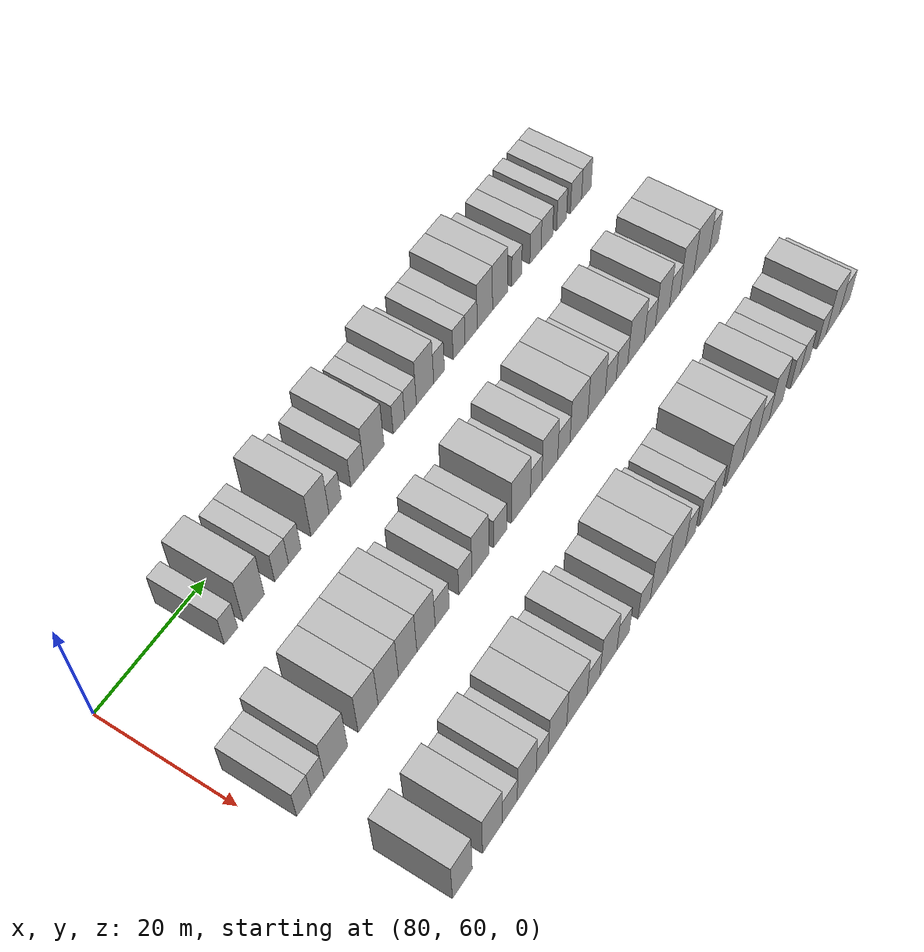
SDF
<sdf version="1.6">
 <world name="default">
  <model name="building_620">
   <static>1</static>
   <pose>82.0000 75.8753 0 0.000000 0.000000 0.000000</pose>
   <link name="link">
    <pose>0 0 3.00 0 0 0</pose>
    <collision name="collision"><geometry><box><size>10.0000 2.4942 6.0000</size></box></geometry></collision>
    <visual name="visual">
     <cast_shadows>0</cast_shadows>
     <geometry><box><size>10.0000 2.4942 6.0000</size></box></geometry>
     <material>
      <script>
       <uri>model://HANNAS_wall/materials/scripts</uri>
       <uri>model://HANNAS_wall/materials/textures</uri>
       <name>vrc/HANNAS_wall</name>
      </script>
     </material>
    </visual>
   </link>
  </model>
  <model name="building_621">
   <static>1</static>
   <pose>82.0000 80.1658 0 0.000000 0.000000 0.000000</pose>
   <link name="link">
    <pose>0 0 4.50 0 0 0</pose>
    <collision name="collision"><geometry><box><size>10.0000 4.0868 9.0000</size></box></geometry></collision>
    <visual name="visual">
     <cast_shadows>0</cast_shadows>
     <geometry><box><size>10.0000 4.0868 9.0000</size></box></geometry>
     <material>
      <script>
       <uri>model://HANNAS_wall/materials/scripts</uri>
       <uri>model://HANNAS_wall/materials/textures</uri>
       <name>vrc/HANNAS_wall</name>
      </script>
     </material>
    </visual>
   </link>
  </model>
  <model name="building_622">
   <static>1</static>
   <pose>82.0000 85.5746 0 0.000000 0.000000 0.000000</pose>
   <link name="link">
    <pose>0 0 3.00 0 0 0</pose>
    <collision name="collision"><geometry><box><size>10.0000 2.7309 6.0000</size></box></geometry></collision>
    <visual name="visual">
     <cast_shadows>0</cast_shadows>
     <geometry><box><size>10.0000 2.7309 6.0000</size></box></geometry>
     <material>
      <script>
       <uri>model://HANNAS_wall/materials/scripts</uri>
       <uri>model://HANNAS_wall/materials/textures</uri>
       <name>vrc/HANNAS_wall</name>
      </script>
     </material>
    </visual>
   </link>
  </model>
  <model name="building_623">
   <static>1</static>
   <pose>82.0000 88.1623 0 0.000000 0.000000 0.000000</pose>
   <link name="link">
    <pose>0 0 3.00 0 0 0</pose>
    <collision name="collision"><geometry><box><size>10.0000 2.4445 6.0000</size></box></geometry></collision>
    <visual name="visual">
     <cast_shadows>0</cast_shadows>
     <geometry><box><size>10.0000 2.4445 6.0000</size></box></geometry>
     <material>
      <script>
       <uri>model://HANNAS_wall/materials/scripts</uri>
       <uri>model://HANNAS_wall/materials/textures</uri>
       <name>vrc/HANNAS_wall</name>
      </script>
     </material>
    </visual>
   </link>
  </model>
  <model name="building_624">
   <static>1</static>
   <pose>82.0000 93.2092 0 0.000000 0.000000 0.000000</pose>
   <link name="link">
    <pose>0 0 4.50 0 0 0</pose>
    <collision name="collision"><geometry><box><size>10.0000 3.6492 9.0000</size></box></geometry></collision>
    <visual name="visual">
     <cast_shadows>0</cast_shadows>
     <geometry><box><size>10.0000 3.6492 9.0000</size></box></geometry>
     <material>
      <script>
       <uri>model://HANNAS_wall/materials/scripts</uri>
       <uri>model://HANNAS_wall/materials/textures</uri>
       <name>vrc/HANNAS_wall</name>
      </script>
     </material>
    </visual>
   </link>
  </model>
  <model name="building_625">
   <static>1</static>
   <pose>82.0000 96.2907 0 0.000000 0.000000 0.000000</pose>
   <link name="link">
    <pose>0 0 3.00 0 0 0</pose>
    <collision name="collision"><geometry><box><size>10.0000 2.5138 6.0000</size></box></geometry></collision>
    <visual name="visual">
     <cast_shadows>0</cast_shadows>
     <geometry><box><size>10.0000 2.5138 6.0000</size></box></geometry>
     <material>
      <script>
       <uri>model://HANNAS_wall/materials/scripts</uri>
       <uri>model://HANNAS_wall/materials/textures</uri>
       <name>vrc/HANNAS_wall</name>
      </script>
     </material>
    </visual>
   </link>
  </model>
  <model name="building_626">
   <static>1</static>
   <pose>82.0000 100.9349 0 0.000000 0.000000 0.000000</pose>
   <link name="link">
    <pose>0 0 3.00 0 0 0</pose>
    <collision name="collision"><geometry><box><size>10.0000 2.7748 6.0000</size></box></geometry></collision>
    <visual name="visual">
     <cast_shadows>0</cast_shadows>
     <geometry><box><size>10.0000 2.7748 6.0000</size></box></geometry>
     <material>
      <script>
       <uri>model://HANNAS_wall/materials/scripts</uri>
       <uri>model://HANNAS_wall/materials/textures</uri>
       <name>vrc/HANNAS_wall</name>
      </script>
     </material>
    </visual>
   </link>
  </model>
  <model name="building_627">
   <static>1</static>
   <pose>82.0000 104.4559 0 0.000000 0.000000 0.000000</pose>
   <link name="link">
    <pose>0 0 4.50 0 0 0</pose>
    <collision name="collision"><geometry><box><size>10.0000 4.2672 9.0000</size></box></geometry></collision>
    <visual name="visual">
     <cast_shadows>0</cast_shadows>
     <geometry><box><size>10.0000 4.2672 9.0000</size></box></geometry>
     <material>
      <script>
       <uri>model://HANNAS_wall/materials/scripts</uri>
       <uri>model://HANNAS_wall/materials/textures</uri>
       <name>vrc/HANNAS_wall</name>
      </script>
     </material>
    </visual>
   </link>
  </model>
  <model name="building_628">
   <static>1</static>
   <pose>82.0000 109.8465 0 0.000000 0.000000 0.000000</pose>
   <link name="link">
    <pose>0 0 3.00 0 0 0</pose>
    <collision name="collision"><geometry><box><size>10.0000 2.5140 6.0000</size></box></geometry></collision>
    <visual name="visual">
     <cast_shadows>0</cast_shadows>
     <geometry><box><size>10.0000 2.5140 6.0000</size></box></geometry>
     <material>
      <script>
       <uri>model://HANNAS_wall/materials/scripts</uri>
       <uri>model://HANNAS_wall/materials/textures</uri>
       <name>vrc/HANNAS_wall</name>
      </script>
     </material>
    </visual>
   </link>
  </model>
  <model name="building_629">
   <static>1</static>
   <pose>82.0000 112.3917 0 0.000000 0.000000 0.000000</pose>
   <link name="link">
    <pose>0 0 3.00 0 0 0</pose>
    <collision name="collision"><geometry><box><size>10.0000 2.5765 6.0000</size></box></geometry></collision>
    <visual name="visual">
     <cast_shadows>0</cast_shadows>
     <geometry><box><size>10.0000 2.5765 6.0000</size></box></geometry>
     <material>
      <script>
       <uri>model://HANNAS_wall/materials/scripts</uri>
       <uri>model://HANNAS_wall/materials/textures</uri>
       <name>vrc/HANNAS_wall</name>
      </script>
     </material>
    </visual>
   </link>
  </model>
  <model name="building_630">
   <static>1</static>
   <pose>82.0000 115.6186 0 0.000000 0.000000 0.000000</pose>
   <link name="link">
    <pose>0 0 4.50 0 0 0</pose>
    <collision name="collision"><geometry><box><size>10.0000 3.8771 9.0000</size></box></geometry></collision>
    <visual name="visual">
     <cast_shadows>0</cast_shadows>
     <geometry><box><size>10.0000 3.8771 9.0000</size></box></geometry>
     <material>
      <script>
       <uri>model://HANNAS_wall/materials/scripts</uri>
       <uri>model://HANNAS_wall/materials/textures</uri>
       <name>vrc/HANNAS_wall</name>
      </script>
     </material>
    </visual>
   </link>
  </model>
  <model name="building_631">
   <static>1</static>
   <pose>82.0000 118.7643 0 0.000000 0.000000 0.000000</pose>
   <link name="link">
    <pose>0 0 3.00 0 0 0</pose>
    <collision name="collision"><geometry><box><size>10.0000 2.4145 6.0000</size></box></geometry></collision>
    <visual name="visual">
     <cast_shadows>0</cast_shadows>
     <geometry><box><size>10.0000 2.4145 6.0000</size></box></geometry>
     <material>
      <script>
       <uri>model://HANNAS_wall/materials/scripts</uri>
       <uri>model://HANNAS_wall/materials/textures</uri>
       <name>vrc/HANNAS_wall</name>
      </script>
     </material>
    </visual>
   </link>
  </model>
  <model name="building_632">
   <static>1</static>
   <pose>82.0000 123.3497 0 0.000000 0.000000 0.000000</pose>
   <link name="link">
    <pose>0 0 3.00 0 0 0</pose>
    <collision name="collision"><geometry><box><size>10.0000 2.7562 6.0000</size></box></geometry></collision>
    <visual name="visual">
     <cast_shadows>0</cast_shadows>
     <geometry><box><size>10.0000 2.7562 6.0000</size></box></geometry>
     <material>
      <script>
       <uri>model://HANNAS_wall/materials/scripts</uri>
       <uri>model://HANNAS_wall/materials/textures</uri>
       <name>vrc/HANNAS_wall</name>
      </script>
     </material>
    </visual>
   </link>
  </model>
  <model name="building_633">
   <static>1</static>
   <pose>82.0000 126.1560 0 0.000000 0.000000 0.000000</pose>
   <link name="link">
    <pose>0 0 3.00 0 0 0</pose>
    <collision name="collision"><geometry><box><size>10.0000 2.8565 6.0000</size></box></geometry></collision>
    <visual name="visual">
     <cast_shadows>0</cast_shadows>
     <geometry><box><size>10.0000 2.8565 6.0000</size></box></geometry>
     <material>
      <script>
       <uri>model://HANNAS_wall/materials/scripts</uri>
       <uri>model://HANNAS_wall/materials/textures</uri>
       <name>vrc/HANNAS_wall</name>
      </script>
     </material>
    </visual>
   </link>
  </model>
  <model name="building_634">
   <static>1</static>
   <pose>82.0000 129.3942 0 0.000000 0.000000 0.000000</pose>
   <link name="link">
    <pose>0 0 4.50 0 0 0</pose>
    <collision name="collision"><geometry><box><size>10.0000 3.6199 9.0000</size></box></geometry></collision>
    <visual name="visual">
     <cast_shadows>0</cast_shadows>
     <geometry><box><size>10.0000 3.6199 9.0000</size></box></geometry>
     <material>
      <script>
       <uri>model://HANNAS_wall/materials/scripts</uri>
       <uri>model://HANNAS_wall/materials/textures</uri>
       <name>vrc/HANNAS_wall</name>
      </script>
     </material>
    </visual>
   </link>
  </model>
  <model name="building_635">
   <static>1</static>
   <pose>82.0000 133.0277 0 0.000000 0.000000 0.000000</pose>
   <link name="link">
    <pose>0 0 4.50 0 0 0</pose>
    <collision name="collision"><geometry><box><size>10.0000 3.6472 9.0000</size></box></geometry></collision>
    <visual name="visual">
     <cast_shadows>0</cast_shadows>
     <geometry><box><size>10.0000 3.6472 9.0000</size></box></geometry>
     <material>
      <script>
       <uri>model://HANNAS_wall/materials/scripts</uri>
       <uri>model://HANNAS_wall/materials/textures</uri>
       <name>vrc/HANNAS_wall</name>
      </script>
     </material>
    </visual>
   </link>
  </model>
  <model name="building_636">
   <static>1</static>
   <pose>82.0000 137.0775 0 0.000000 0.000000 0.000000</pose>
   <link name="link">
    <pose>0 0 3.00 0 0 0</pose>
    <collision name="collision"><geometry><box><size>10.0000 2.4524 6.0000</size></box></geometry></collision>
    <visual name="visual">
     <cast_shadows>0</cast_shadows>
     <geometry><box><size>10.0000 2.4524 6.0000</size></box></geometry>
     <material>
      <script>
       <uri>model://HANNAS_wall/materials/scripts</uri>
       <uri>model://HANNAS_wall/materials/textures</uri>
       <name>vrc/HANNAS_wall</name>
      </script>
     </material>
    </visual>
   </link>
  </model>
  <model name="building_637">
   <static>1</static>
   <pose>82.0000 141.6960 0 0.000000 0.000000 0.000000</pose>
   <link name="link">
    <pose>0 0 3.00 0 0 0</pose>
    <collision name="collision"><geometry><box><size>10.0000 2.7845 6.0000</size></box></geometry></collision>
    <visual name="visual">
     <cast_shadows>0</cast_shadows>
     <geometry><box><size>10.0000 2.7845 6.0000</size></box></geometry>
     <material>
      <script>
       <uri>model://HANNAS_wall/materials/scripts</uri>
       <uri>model://HANNAS_wall/materials/textures</uri>
       <name>vrc/HANNAS_wall</name>
      </script>
     </material>
    </visual>
   </link>
  </model>
  <model name="building_638">
   <static>1</static>
   <pose>82.0000 144.5595 0 0.000000 0.000000 0.000000</pose>
   <link name="link">
    <pose>0 0 3.00 0 0 0</pose>
    <collision name="collision"><geometry><box><size>10.0000 2.9425 6.0000</size></box></geometry></collision>
    <visual name="visual">
     <cast_shadows>0</cast_shadows>
     <geometry><box><size>10.0000 2.9425 6.0000</size></box></geometry>
     <material>
      <script>
       <uri>model://HANNAS_wall/materials/scripts</uri>
       <uri>model://HANNAS_wall/materials/textures</uri>
       <name>vrc/HANNAS_wall</name>
      </script>
     </material>
    </visual>
   </link>
  </model>
  <model name="building_639">
   <static>1</static>
   <pose>82.0000 148.2934 0 0.000000 0.000000 0.000000</pose>
   <link name="link">
    <pose>0 0 3.00 0 0 0</pose>
    <collision name="collision"><geometry><box><size>10.0000 2.5254 6.0000</size></box></geometry></collision>
    <visual name="visual">
     <cast_shadows>0</cast_shadows>
     <geometry><box><size>10.0000 2.5254 6.0000</size></box></geometry>
     <material>
      <script>
       <uri>model://HANNAS_wall/materials/scripts</uri>
       <uri>model://HANNAS_wall/materials/textures</uri>
       <name>vrc/HANNAS_wall</name>
      </script>
     </material>
    </visual>
   </link>
  </model>
  <model name="building_640">
   <static>1</static>
   <pose>82.0000 152.0089 0 0.000000 0.000000 0.000000</pose>
   <link name="link">
    <pose>0 0 3.00 0 0 0</pose>
    <collision name="collision"><geometry><box><size>10.0000 2.9054 6.0000</size></box></geometry></collision>
    <visual name="visual">
     <cast_shadows>0</cast_shadows>
     <geometry><box><size>10.0000 2.9054 6.0000</size></box></geometry>
     <material>
      <script>
       <uri>model://HANNAS_wall/materials/scripts</uri>
       <uri>model://HANNAS_wall/materials/textures</uri>
       <name>vrc/HANNAS_wall</name>
      </script>
     </material>
    </visual>
   </link>
  </model>
  <model name="building_641">
   <static>1</static>
   <pose>82.0000 154.7137 0 0.000000 0.000000 0.000000</pose>
   <link name="link">
    <pose>0 0 3.00 0 0 0</pose>
    <collision name="collision"><geometry><box><size>10.0000 2.5042 6.0000</size></box></geometry></collision>
    <visual name="visual">
     <cast_shadows>0</cast_shadows>
     <geometry><box><size>10.0000 2.5042 6.0000</size></box></geometry>
     <material>
      <script>
       <uri>model://HANNAS_wall/materials/scripts</uri>
       <uri>model://HANNAS_wall/materials/textures</uri>
       <name>vrc/HANNAS_wall</name>
      </script>
     </material>
    </visual>
   </link>
  </model>
  <model name="building_784">
   <static>1</static>
   <pose>101.0000 63.7731 0 0.000000 0.000000 0.000000</pose>
   <link name="link">
    <pose>0 0 3.00 0 0 0</pose>
    <collision name="collision"><geometry><box><size>10.0000 2.6298 6.0000</size></box></geometry></collision>
    <visual name="visual">
     <cast_shadows>0</cast_shadows>
     <geometry><box><size>10.0000 2.6298 6.0000</size></box></geometry>
     <material>
      <script>
       <uri>model://HANNAS_wall/materials/scripts</uri>
       <uri>model://HANNAS_wall/materials/textures</uri>
       <name>vrc/HANNAS_wall</name>
      </script>
     </material>
    </visual>
   </link>
  </model>
  <model name="building_785">
   <static>1</static>
   <pose>101.0000 66.3092 0 0.000000 0.000000 0.000000</pose>
   <link name="link">
    <pose>0 0 3.00 0 0 0</pose>
    <collision name="collision"><geometry><box><size>10.0000 2.4425 6.0000</size></box></geometry></collision>
    <visual name="visual">
     <cast_shadows>0</cast_shadows>
     <geometry><box><size>10.0000 2.4425 6.0000</size></box></geometry>
     <material>
      <script>
       <uri>model://HANNAS_wall/materials/scripts</uri>
       <uri>model://HANNAS_wall/materials/textures</uri>
       <name>vrc/HANNAS_wall</name>
      </script>
     </material>
    </visual>
   </link>
  </model>
  <model name="building_786">
   <static>1</static>
   <pose>101.0000 69.7316 0 0.000000 0.000000 0.000000</pose>
   <link name="link">
    <pose>0 0 4.50 0 0 0</pose>
    <collision name="collision"><geometry><box><size>10.0000 4.4021 9.0000</size></box></geometry></collision>
    <visual name="visual">
     <cast_shadows>0</cast_shadows>
     <geometry><box><size>10.0000 4.4021 9.0000</size></box></geometry>
     <material>
      <script>
       <uri>model://HANNAS_wall/materials/scripts</uri>
       <uri>model://HANNAS_wall/materials/textures</uri>
       <name>vrc/HANNAS_wall</name>
      </script>
     </material>
    </visual>
   </link>
  </model>
  <model name="building_787">
   <static>1</static>
   <pose>101.0000 75.8736 0 0.000000 0.000000 0.000000</pose>
   <link name="link">
    <pose>0 0 4.50 0 0 0</pose>
    <collision name="collision"><geometry><box><size>10.0000 3.8819 9.0000</size></box></geometry></collision>
    <visual name="visual">
     <cast_shadows>0</cast_shadows>
     <geometry><box><size>10.0000 3.8819 9.0000</size></box></geometry>
     <material>
      <script>
       <uri>model://HANNAS_wall/materials/scripts</uri>
       <uri>model://HANNAS_wall/materials/textures</uri>
       <name>vrc/HANNAS_wall</name>
      </script>
     </material>
    </visual>
   </link>
  </model>
  <model name="building_788">
   <static>1</static>
   <pose>101.0000 79.8248 0 0.000000 0.000000 0.000000</pose>
   <link name="link">
    <pose>0 0 4.50 0 0 0</pose>
    <collision name="collision"><geometry><box><size>10.0000 4.0207 9.0000</size></box></geometry></collision>
    <visual name="visual">
     <cast_shadows>0</cast_shadows>
     <geometry><box><size>10.0000 4.0207 9.0000</size></box></geometry>
     <material>
      <script>
       <uri>model://HANNAS_wall/materials/scripts</uri>
       <uri>model://HANNAS_wall/materials/textures</uri>
       <name>vrc/HANNAS_wall</name>
      </script>
     </material>
    </visual>
   </link>
  </model>
  <model name="building_789">
   <static>1</static>
   <pose>101.0000 83.6804 0 0.000000 0.000000 0.000000</pose>
   <link name="link">
    <pose>0 0 4.50 0 0 0</pose>
    <collision name="collision"><geometry><box><size>10.0000 3.6905 9.0000</size></box></geometry></collision>
    <visual name="visual">
     <cast_shadows>0</cast_shadows>
     <geometry><box><size>10.0000 3.6905 9.0000</size></box></geometry>
     <material>
      <script>
       <uri>model://HANNAS_wall/materials/scripts</uri>
       <uri>model://HANNAS_wall/materials/textures</uri>
       <name>vrc/HANNAS_wall</name>
      </script>
     </material>
    </visual>
   </link>
  </model>
  <model name="building_790">
   <static>1</static>
   <pose>101.0000 87.3968 0 0.000000 0.000000 0.000000</pose>
   <link name="link">
    <pose>0 0 4.50 0 0 0</pose>
    <collision name="collision"><geometry><box><size>10.0000 3.7423 9.0000</size></box></geometry></collision>
    <visual name="visual">
     <cast_shadows>0</cast_shadows>
     <geometry><box><size>10.0000 3.7423 9.0000</size></box></geometry>
     <material>
      <script>
       <uri>model://HANNAS_wall/materials/scripts</uri>
       <uri>model://HANNAS_wall/materials/textures</uri>
       <name>vrc/HANNAS_wall</name>
      </script>
     </material>
    </visual>
   </link>
  </model>
  <model name="building_791">
   <static>1</static>
   <pose>101.0000 90.7360 0 0.000000 0.000000 0.000000</pose>
   <link name="link">
    <pose>0 0 3.00 0 0 0</pose>
    <collision name="collision"><geometry><box><size>10.0000 2.9360 6.0000</size></box></geometry></collision>
    <visual name="visual">
     <cast_shadows>0</cast_shadows>
     <geometry><box><size>10.0000 2.9360 6.0000</size></box></geometry>
     <material>
      <script>
       <uri>model://HANNAS_wall/materials/scripts</uri>
       <uri>model://HANNAS_wall/materials/textures</uri>
       <name>vrc/HANNAS_wall</name>
      </script>
     </material>
    </visual>
   </link>
  </model>
  <model name="building_792">
   <static>1</static>
   <pose>101.0000 95.6014 0 0.000000 0.000000 0.000000</pose>
   <link name="link">
    <pose>0 0 3.00 0 0 0</pose>
    <collision name="collision"><geometry><box><size>10.0000 2.7949 6.0000</size></box></geometry></collision>
    <visual name="visual">
     <cast_shadows>0</cast_shadows>
     <geometry><box><size>10.0000 2.7949 6.0000</size></box></geometry>
     <material>
      <script>
       <uri>model://HANNAS_wall/materials/scripts</uri>
       <uri>model://HANNAS_wall/materials/textures</uri>
       <name>vrc/HANNAS_wall</name>
      </script>
     </material>
    </visual>
   </link>
  </model>
  <model name="building_793">
   <static>1</static>
   <pose>101.0000 98.8187 0 0.000000 0.000000 0.000000</pose>
   <link name="link">
    <pose>0 0 4.50 0 0 0</pose>
    <collision name="collision"><geometry><box><size>10.0000 3.6396 9.0000</size></box></geometry></collision>
    <visual name="visual">
     <cast_shadows>0</cast_shadows>
     <geometry><box><size>10.0000 3.6396 9.0000</size></box></geometry>
     <material>
      <script>
       <uri>model://HANNAS_wall/materials/scripts</uri>
       <uri>model://HANNAS_wall/materials/textures</uri>
       <name>vrc/HANNAS_wall</name>
      </script>
     </material>
    </visual>
   </link>
  </model>
  <model name="building_794">
   <static>1</static>
   <pose>101.0000 103.1012 0 0.000000 0.000000 0.000000</pose>
   <link name="link">
    <pose>0 0 3.00 0 0 0</pose>
    <collision name="collision"><geometry><box><size>10.0000 2.9254 6.0000</size></box></geometry></collision>
    <visual name="visual">
     <cast_shadows>0</cast_shadows>
     <geometry><box><size>10.0000 2.9254 6.0000</size></box></geometry>
     <material>
      <script>
       <uri>model://HANNAS_wall/materials/scripts</uri>
       <uri>model://HANNAS_wall/materials/textures</uri>
       <name>vrc/HANNAS_wall</name>
      </script>
     </material>
    </visual>
   </link>
  </model>
  <model name="building_795">
   <static>1</static>
   <pose>101.0000 107.7041 0 0.000000 0.000000 0.000000</pose>
   <link name="link">
    <pose>0 0 4.50 0 0 0</pose>
    <collision name="collision"><geometry><box><size>10.0000 4.2804 9.0000</size></box></geometry></collision>
    <visual name="visual">
     <cast_shadows>0</cast_shadows>
     <geometry><box><size>10.0000 4.2804 9.0000</size></box></geometry>
     <material>
      <script>
       <uri>model://HANNAS_wall/materials/scripts</uri>
       <uri>model://HANNAS_wall/materials/textures</uri>
       <name>vrc/HANNAS_wall</name>
      </script>
     </material>
    </visual>
   </link>
  </model>
  <model name="building_796">
   <static>1</static>
   <pose>101.0000 111.1352 0 0.000000 0.000000 0.000000</pose>
   <link name="link">
    <pose>0 0 3.00 0 0 0</pose>
    <collision name="collision"><geometry><box><size>10.0000 2.5819 6.0000</size></box></geometry></collision>
    <visual name="visual">
     <cast_shadows>0</cast_shadows>
     <geometry><box><size>10.0000 2.5819 6.0000</size></box></geometry>
     <material>
      <script>
       <uri>model://HANNAS_wall/materials/scripts</uri>
       <uri>model://HANNAS_wall/materials/textures</uri>
       <name>vrc/HANNAS_wall</name>
      </script>
     </material>
    </visual>
   </link>
  </model>
  <model name="building_797">
   <static>1</static>
   <pose>101.0000 114.2594 0 0.000000 0.000000 0.000000</pose>
   <link name="link">
    <pose>0 0 4.50 0 0 0</pose>
    <collision name="collision"><geometry><box><size>10.0000 3.6665 9.0000</size></box></geometry></collision>
    <visual name="visual">
     <cast_shadows>0</cast_shadows>
     <geometry><box><size>10.0000 3.6665 9.0000</size></box></geometry>
     <material>
      <script>
       <uri>model://HANNAS_wall/materials/scripts</uri>
       <uri>model://HANNAS_wall/materials/textures</uri>
       <name>vrc/HANNAS_wall</name>
      </script>
     </material>
    </visual>
   </link>
  </model>
  <model name="building_798">
   <static>1</static>
   <pose>101.0000 117.5287 0 0.000000 0.000000 0.000000</pose>
   <link name="link">
    <pose>0 0 3.00 0 0 0</pose>
    <collision name="collision"><geometry><box><size>10.0000 2.8721 6.0000</size></box></geometry></collision>
    <visual name="visual">
     <cast_shadows>0</cast_shadows>
     <geometry><box><size>10.0000 2.8721 6.0000</size></box></geometry>
     <material>
      <script>
       <uri>model://HANNAS_wall/materials/scripts</uri>
       <uri>model://HANNAS_wall/materials/textures</uri>
       <name>vrc/HANNAS_wall</name>
      </script>
     </material>
    </visual>
   </link>
  </model>
  <model name="building_799">
   <static>1</static>
   <pose>101.0000 121.0798 0 0.000000 0.000000 0.000000</pose>
   <link name="link">
    <pose>0 0 4.50 0 0 0</pose>
    <collision name="collision"><geometry><box><size>10.0000 4.2302 9.0000</size></box></geometry></collision>
    <visual name="visual">
     <cast_shadows>0</cast_shadows>
     <geometry><box><size>10.0000 4.2302 9.0000</size></box></geometry>
     <material>
      <script>
       <uri>model://HANNAS_wall/materials/scripts</uri>
       <uri>model://HANNAS_wall/materials/textures</uri>
       <name>vrc/HANNAS_wall</name>
      </script>
     </material>
    </visual>
   </link>
  </model>
  <model name="building_800">
   <static>1</static>
   <pose>101.0000 125.3142 0 0.000000 0.000000 0.000000</pose>
   <link name="link">
    <pose>0 0 4.50 0 0 0</pose>
    <collision name="collision"><geometry><box><size>10.0000 4.2385 9.0000</size></box></geometry></collision>
    <visual name="visual">
     <cast_shadows>0</cast_shadows>
     <geometry><box><size>10.0000 4.2385 9.0000</size></box></geometry>
     <material>
      <script>
       <uri>model://HANNAS_wall/materials/scripts</uri>
       <uri>model://HANNAS_wall/materials/textures</uri>
       <name>vrc/HANNAS_wall</name>
      </script>
     </material>
    </visual>
   </link>
  </model>
  <model name="building_801">
   <static>1</static>
   <pose>101.0000 128.7861 0 0.000000 0.000000 0.000000</pose>
   <link name="link">
    <pose>0 0 3.00 0 0 0</pose>
    <collision name="collision"><geometry><box><size>10.0000 2.7055 6.0000</size></box></geometry></collision>
    <visual name="visual">
     <cast_shadows>0</cast_shadows>
     <geometry><box><size>10.0000 2.7055 6.0000</size></box></geometry>
     <material>
      <script>
       <uri>model://HANNAS_wall/materials/scripts</uri>
       <uri>model://HANNAS_wall/materials/textures</uri>
       <name>vrc/HANNAS_wall</name>
      </script>
     </material>
    </visual>
   </link>
  </model>
  <model name="building_802">
   <static>1</static>
   <pose>101.0000 131.5868 0 0.000000 0.000000 0.000000</pose>
   <link name="link">
    <pose>0 0 3.00 0 0 0</pose>
    <collision name="collision"><geometry><box><size>10.0000 2.8958 6.0000</size></box></geometry></collision>
    <visual name="visual">
     <cast_shadows>0</cast_shadows>
     <geometry><box><size>10.0000 2.8958 6.0000</size></box></geometry>
     <material>
      <script>
       <uri>model://HANNAS_wall/materials/scripts</uri>
       <uri>model://HANNAS_wall/materials/textures</uri>
       <name>vrc/HANNAS_wall</name>
      </script>
     </material>
    </visual>
   </link>
  </model>
  <model name="building_803">
   <static>1</static>
   <pose>101.0000 135.1219 0 0.000000 0.000000 0.000000</pose>
   <link name="link">
    <pose>0 0 4.50 0 0 0</pose>
    <collision name="collision"><geometry><box><size>10.0000 4.1745 9.0000</size></box></geometry></collision>
    <visual name="visual">
     <cast_shadows>0</cast_shadows>
     <geometry><box><size>10.0000 4.1745 9.0000</size></box></geometry>
     <material>
      <script>
       <uri>model://HANNAS_wall/materials/scripts</uri>
       <uri>model://HANNAS_wall/materials/textures</uri>
       <name>vrc/HANNAS_wall</name>
      </script>
     </material>
    </visual>
   </link>
  </model>
  <model name="building_804">
   <static>1</static>
   <pose>101.0000 138.6345 0 0.000000 0.000000 0.000000</pose>
   <link name="link">
    <pose>0 0 3.00 0 0 0</pose>
    <collision name="collision"><geometry><box><size>10.0000 2.8507 6.0000</size></box></geometry></collision>
    <visual name="visual">
     <cast_shadows>0</cast_shadows>
     <geometry><box><size>10.0000 2.8507 6.0000</size></box></geometry>
     <material>
      <script>
       <uri>model://HANNAS_wall/materials/scripts</uri>
       <uri>model://HANNAS_wall/materials/textures</uri>
       <name>vrc/HANNAS_wall</name>
      </script>
     </material>
    </visual>
   </link>
  </model>
  <model name="building_805">
   <static>1</static>
   <pose>101.0000 141.9040 0 0.000000 0.000000 0.000000</pose>
   <link name="link">
    <pose>0 0 4.50 0 0 0</pose>
    <collision name="collision"><geometry><box><size>10.0000 3.6883 9.0000</size></box></geometry></collision>
    <visual name="visual">
     <cast_shadows>0</cast_shadows>
     <geometry><box><size>10.0000 3.6883 9.0000</size></box></geometry>
     <material>
      <script>
       <uri>model://HANNAS_wall/materials/scripts</uri>
       <uri>model://HANNAS_wall/materials/textures</uri>
       <name>vrc/HANNAS_wall</name>
      </script>
     </material>
    </visual>
   </link>
  </model>
  <model name="building_806">
   <static>1</static>
   <pose>101.0000 145.1303 0 0.000000 0.000000 0.000000</pose>
   <link name="link">
    <pose>0 0 3.00 0 0 0</pose>
    <collision name="collision"><geometry><box><size>10.0000 2.7643 6.0000</size></box></geometry></collision>
    <visual name="visual">
     <cast_shadows>0</cast_shadows>
     <geometry><box><size>10.0000 2.7643 6.0000</size></box></geometry>
     <material>
      <script>
       <uri>model://HANNAS_wall/materials/scripts</uri>
       <uri>model://HANNAS_wall/materials/textures</uri>
       <name>vrc/HANNAS_wall</name>
      </script>
     </material>
    </visual>
   </link>
  </model>
  <model name="building_807">
   <static>1</static>
   <pose>101.0000 148.3741 0 0.000000 0.000000 0.000000</pose>
   <link name="link">
    <pose>0 0 4.50 0 0 0</pose>
    <collision name="collision"><geometry><box><size>10.0000 3.7234 9.0000</size></box></geometry></collision>
    <visual name="visual">
     <cast_shadows>0</cast_shadows>
     <geometry><box><size>10.0000 3.7234 9.0000</size></box></geometry>
     <material>
      <script>
       <uri>model://HANNAS_wall/materials/scripts</uri>
       <uri>model://HANNAS_wall/materials/textures</uri>
       <name>vrc/HANNAS_wall</name>
      </script>
     </material>
    </visual>
   </link>
  </model>
  <model name="building_808">
   <static>1</static>
   <pose>101.0000 152.3523 0 0.000000 0.000000 0.000000</pose>
   <link name="link">
    <pose>0 0 4.50 0 0 0</pose>
    <collision name="collision"><geometry><box><size>10.0000 4.2329 9.0000</size></box></geometry></collision>
    <visual name="visual">
     <cast_shadows>0</cast_shadows>
     <geometry><box><size>10.0000 4.2329 9.0000</size></box></geometry>
     <material>
      <script>
       <uri>model://HANNAS_wall/materials/scripts</uri>
       <uri>model://HANNAS_wall/materials/textures</uri>
       <name>vrc/HANNAS_wall</name>
      </script>
     </material>
    </visual>
   </link>
  </model>
  <model name="building_809">
   <static>1</static>
   <pose>101.0000 155.7069 0 0.000000 0.000000 0.000000</pose>
   <link name="link">
    <pose>0 0 3.00 0 0 0</pose>
    <collision name="collision"><geometry><box><size>10.0000 2.4764 6.0000</size></box></geometry></collision>
    <visual name="visual">
     <cast_shadows>0</cast_shadows>
     <geometry><box><size>10.0000 2.4764 6.0000</size></box></geometry>
     <material>
      <script>
       <uri>model://HANNAS_wall/materials/scripts</uri>
       <uri>model://HANNAS_wall/materials/textures</uri>
       <name>vrc/HANNAS_wall</name>
      </script>
     </material>
    </visual>
   </link>
  </model>
  <model name="building_960">
   <static>1</static>
   <pose>120.0000 65.7725 0 0.000000 0.000000 0.000000</pose>
   <link name="link">
    <pose>0 0 4.50 0 0 0</pose>
    <collision name="collision"><geometry><box><size>10.0000 3.7792 9.0000</size></box></geometry></collision>
    <visual name="visual">
     <cast_shadows>0</cast_shadows>
     <geometry><box><size>10.0000 3.7792 9.0000</size></box></geometry>
     <material>
      <script>
       <uri>model://HANNAS_wall/materials/scripts</uri>
       <uri>model://HANNAS_wall/materials/textures</uri>
       <name>vrc/HANNAS_wall</name>
      </script>
     </material>
    </visual>
   </link>
  </model>
  <model name="building_961">
   <static>1</static>
   <pose>120.0000 71.6270 0 0.000000 0.000000 0.000000</pose>
   <link name="link">
    <pose>0 0 4.50 0 0 0</pose>
    <collision name="collision"><geometry><box><size>10.0000 3.9298 9.0000</size></box></geometry></collision>
    <visual name="visual">
     <cast_shadows>0</cast_shadows>
     <geometry><box><size>10.0000 3.9298 9.0000</size></box></geometry>
     <material>
      <script>
       <uri>model://HANNAS_wall/materials/scripts</uri>
       <uri>model://HANNAS_wall/materials/textures</uri>
       <name>vrc/HANNAS_wall</name>
      </script>
     </material>
    </visual>
   </link>
  </model>
  <model name="building_962">
   <static>1</static>
   <pose>120.0000 75.0761 0 0.000000 0.000000 0.000000</pose>
   <link name="link">
    <pose>0 0 3.00 0 0 0</pose>
    <collision name="collision"><geometry><box><size>10.0000 2.9682 6.0000</size></box></geometry></collision>
    <visual name="visual">
     <cast_shadows>0</cast_shadows>
     <geometry><box><size>10.0000 2.9682 6.0000</size></box></geometry>
     <material>
      <script>
       <uri>model://HANNAS_wall/materials/scripts</uri>
       <uri>model://HANNAS_wall/materials/textures</uri>
       <name>vrc/HANNAS_wall</name>
      </script>
     </material>
    </visual>
   </link>
  </model>
  <model name="building_963">
   <static>1</static>
   <pose>120.0000 78.4931 0 0.000000 0.000000 0.000000</pose>
   <link name="link">
    <pose>0 0 4.50 0 0 0</pose>
    <collision name="collision"><geometry><box><size>10.0000 3.8658 9.0000</size></box></geometry></collision>
    <visual name="visual">
     <cast_shadows>0</cast_shadows>
     <geometry><box><size>10.0000 3.8658 9.0000</size></box></geometry>
     <material>
      <script>
       <uri>model://HANNAS_wall/materials/scripts</uri>
       <uri>model://HANNAS_wall/materials/textures</uri>
       <name>vrc/HANNAS_wall</name>
      </script>
     </material>
    </visual>
   </link>
  </model>
  <model name="building_964">
   <static>1</static>
   <pose>120.0000 81.6596 0 0.000000 0.000000 0.000000</pose>
   <link name="link">
    <pose>0 0 3.00 0 0 0</pose>
    <collision name="collision"><geometry><box><size>10.0000 2.4673 6.0000</size></box></geometry></collision>
    <visual name="visual">
     <cast_shadows>0</cast_shadows>
     <geometry><box><size>10.0000 2.4673 6.0000</size></box></geometry>
     <material>
      <script>
       <uri>model://HANNAS_wall/materials/scripts</uri>
       <uri>model://HANNAS_wall/materials/textures</uri>
       <name>vrc/HANNAS_wall</name>
      </script>
     </material>
    </visual>
   </link>
  </model>
  <model name="building_965">
   <static>1</static>
   <pose>120.0000 84.8365 0 0.000000 0.000000 0.000000</pose>
   <link name="link">
    <pose>0 0 4.50 0 0 0</pose>
    <collision name="collision"><geometry><box><size>10.0000 3.8864 9.0000</size></box></geometry></collision>
    <visual name="visual">
     <cast_shadows>0</cast_shadows>
     <geometry><box><size>10.0000 3.8864 9.0000</size></box></geometry>
     <material>
      <script>
       <uri>model://HANNAS_wall/materials/scripts</uri>
       <uri>model://HANNAS_wall/materials/textures</uri>
       <name>vrc/HANNAS_wall</name>
      </script>
     </material>
    </visual>
   </link>
  </model>
  <model name="building_966">
   <static>1</static>
   <pose>120.0000 88.9857 0 0.000000 0.000000 0.000000</pose>
   <link name="link">
    <pose>0 0 4.50 0 0 0</pose>
    <collision name="collision"><geometry><box><size>10.0000 4.4119 9.0000</size></box></geometry></collision>
    <visual name="visual">
     <cast_shadows>0</cast_shadows>
     <geometry><box><size>10.0000 4.4119 9.0000</size></box></geometry>
     <material>
      <script>
       <uri>model://HANNAS_wall/materials/scripts</uri>
       <uri>model://HANNAS_wall/materials/textures</uri>
       <name>vrc/HANNAS_wall</name>
      </script>
     </material>
    </visual>
   </link>
  </model>
  <model name="building_967">
   <static>1</static>
   <pose>120.0000 92.5943 0 0.000000 0.000000 0.000000</pose>
   <link name="link">
    <pose>0 0 3.00 0 0 0</pose>
    <collision name="collision"><geometry><box><size>10.0000 2.8053 6.0000</size></box></geometry></collision>
    <visual name="visual">
     <cast_shadows>0</cast_shadows>
     <geometry><box><size>10.0000 2.8053 6.0000</size></box></geometry>
     <material>
      <script>
       <uri>model://HANNAS_wall/materials/scripts</uri>
       <uri>model://HANNAS_wall/materials/textures</uri>
       <name>vrc/HANNAS_wall</name>
      </script>
     </material>
    </visual>
   </link>
  </model>
  <model name="building_968">
   <static>1</static>
   <pose>120.0000 95.8852 0 0.000000 0.000000 0.000000</pose>
   <link name="link">
    <pose>0 0 4.50 0 0 0</pose>
    <collision name="collision"><geometry><box><size>10.0000 3.7766 9.0000</size></box></geometry></collision>
    <visual name="visual">
     <cast_shadows>0</cast_shadows>
     <geometry><box><size>10.0000 3.7766 9.0000</size></box></geometry>
     <material>
      <script>
       <uri>model://HANNAS_wall/materials/scripts</uri>
       <uri>model://HANNAS_wall/materials/textures</uri>
       <name>vrc/HANNAS_wall</name>
      </script>
     </material>
    </visual>
   </link>
  </model>
  <model name="building_969">
   <static>1</static>
   <pose>120.0000 99.1801 0 0.000000 0.000000 0.000000</pose>
   <link name="link">
    <pose>0 0 3.00 0 0 0</pose>
    <collision name="collision"><geometry><box><size>10.0000 2.8131 6.0000</size></box></geometry></collision>
    <visual name="visual">
     <cast_shadows>0</cast_shadows>
     <geometry><box><size>10.0000 2.8131 6.0000</size></box></geometry>
     <material>
      <script>
       <uri>model://HANNAS_wall/materials/scripts</uri>
       <uri>model://HANNAS_wall/materials/textures</uri>
       <name>vrc/HANNAS_wall</name>
      </script>
     </material>
    </visual>
   </link>
  </model>
  <model name="building_970">
   <static>1</static>
   <pose>120.0000 103.9871 0 0.000000 0.000000 0.000000</pose>
   <link name="link">
    <pose>0 0 3.00 0 0 0</pose>
    <collision name="collision"><geometry><box><size>10.0000 2.8009 6.0000</size></box></geometry></collision>
    <visual name="visual">
     <cast_shadows>0</cast_shadows>
     <geometry><box><size>10.0000 2.8009 6.0000</size></box></geometry>
     <material>
      <script>
       <uri>model://HANNAS_wall/materials/scripts</uri>
       <uri>model://HANNAS_wall/materials/textures</uri>
       <name>vrc/HANNAS_wall</name>
      </script>
     </material>
    </visual>
   </link>
  </model>
  <model name="building_971">
   <static>1</static>
   <pose>120.0000 107.3762 0 0.000000 0.000000 0.000000</pose>
   <link name="link">
    <pose>0 0 4.50 0 0 0</pose>
    <collision name="collision"><geometry><box><size>10.0000 3.9774 9.0000</size></box></geometry></collision>
    <visual name="visual">
     <cast_shadows>0</cast_shadows>
     <geometry><box><size>10.0000 3.9774 9.0000</size></box></geometry>
     <material>
      <script>
       <uri>model://HANNAS_wall/materials/scripts</uri>
       <uri>model://HANNAS_wall/materials/textures</uri>
       <name>vrc/HANNAS_wall</name>
      </script>
     </material>
    </visual>
   </link>
  </model>
  <model name="building_972">
   <static>1</static>
   <pose>120.0000 111.5242 0 0.000000 0.000000 0.000000</pose>
   <link name="link">
    <pose>0 0 4.50 0 0 0</pose>
    <collision name="collision"><geometry><box><size>10.0000 4.3185 9.0000</size></box></geometry></collision>
    <visual name="visual">
     <cast_shadows>0</cast_shadows>
     <geometry><box><size>10.0000 4.3185 9.0000</size></box></geometry>
     <material>
      <script>
       <uri>model://HANNAS_wall/materials/scripts</uri>
       <uri>model://HANNAS_wall/materials/textures</uri>
       <name>vrc/HANNAS_wall</name>
      </script>
     </material>
    </visual>
   </link>
  </model>
  <model name="building_973">
   <static>1</static>
   <pose>120.0000 114.9044 0 0.000000 0.000000 0.000000</pose>
   <link name="link">
    <pose>0 0 3.00 0 0 0</pose>
    <collision name="collision"><geometry><box><size>10.0000 2.4420 6.0000</size></box></geometry></collision>
    <visual name="visual">
     <cast_shadows>0</cast_shadows>
     <geometry><box><size>10.0000 2.4420 6.0000</size></box></geometry>
     <material>
      <script>
       <uri>model://HANNAS_wall/materials/scripts</uri>
       <uri>model://HANNAS_wall/materials/textures</uri>
       <name>vrc/HANNAS_wall</name>
      </script>
     </material>
    </visual>
   </link>
  </model>
  <model name="building_974">
   <static>1</static>
   <pose>120.0000 118.5666 0 0.000000 0.000000 0.000000</pose>
   <link name="link">
    <pose>0 0 3.00 0 0 0</pose>
    <collision name="collision"><geometry><box><size>10.0000 2.8824 6.0000</size></box></geometry></collision>
    <visual name="visual">
     <cast_shadows>0</cast_shadows>
     <geometry><box><size>10.0000 2.8824 6.0000</size></box></geometry>
     <material>
      <script>
       <uri>model://HANNAS_wall/materials/scripts</uri>
       <uri>model://HANNAS_wall/materials/textures</uri>
       <name>vrc/HANNAS_wall</name>
      </script>
     </material>
    </visual>
   </link>
  </model>
  <model name="building_975">
   <static>1</static>
   <pose>120.0000 121.3596 0 0.000000 0.000000 0.000000</pose>
   <link name="link">
    <pose>0 0 3.00 0 0 0</pose>
    <collision name="collision"><geometry><box><size>10.0000 2.7036 6.0000</size></box></geometry></collision>
    <visual name="visual">
     <cast_shadows>0</cast_shadows>
     <geometry><box><size>10.0000 2.7036 6.0000</size></box></geometry>
     <material>
      <script>
       <uri>model://HANNAS_wall/materials/scripts</uri>
       <uri>model://HANNAS_wall/materials/textures</uri>
       <name>vrc/HANNAS_wall</name>
      </script>
     </material>
    </visual>
   </link>
  </model>
  <model name="building_976">
   <static>1</static>
   <pose>120.0000 125.8621 0 0.000000 0.000000 0.000000</pose>
   <link name="link">
    <pose>0 0 4.50 0 0 0</pose>
    <collision name="collision"><geometry><box><size>10.0000 4.3014 9.0000</size></box></geometry></collision>
    <visual name="visual">
     <cast_shadows>0</cast_shadows>
     <geometry><box><size>10.0000 4.3014 9.0000</size></box></geometry>
     <material>
      <script>
       <uri>model://HANNAS_wall/materials/scripts</uri>
       <uri>model://HANNAS_wall/materials/textures</uri>
       <name>vrc/HANNAS_wall</name>
      </script>
     </material>
    </visual>
   </link>
  </model>
  <model name="building_977">
   <static>1</static>
   <pose>120.0000 129.9824 0 0.000000 0.000000 0.000000</pose>
   <link name="link">
    <pose>0 0 4.50 0 0 0</pose>
    <collision name="collision"><geometry><box><size>10.0000 3.9392 9.0000</size></box></geometry></collision>
    <visual name="visual">
     <cast_shadows>0</cast_shadows>
     <geometry><box><size>10.0000 3.9392 9.0000</size></box></geometry>
     <material>
      <script>
       <uri>model://HANNAS_wall/materials/scripts</uri>
       <uri>model://HANNAS_wall/materials/textures</uri>
       <name>vrc/HANNAS_wall</name>
      </script>
     </material>
    </visual>
   </link>
  </model>
  <model name="building_978">
   <static>1</static>
   <pose>120.0000 133.4327 0 0.000000 0.000000 0.000000</pose>
   <link name="link">
    <pose>0 0 3.00 0 0 0</pose>
    <collision name="collision"><geometry><box><size>10.0000 2.9615 6.0000</size></box></geometry></collision>
    <visual name="visual">
     <cast_shadows>0</cast_shadows>
     <geometry><box><size>10.0000 2.9615 6.0000</size></box></geometry>
     <material>
      <script>
       <uri>model://HANNAS_wall/materials/scripts</uri>
       <uri>model://HANNAS_wall/materials/textures</uri>
       <name>vrc/HANNAS_wall</name>
      </script>
     </material>
    </visual>
   </link>
  </model>
  <model name="building_979">
   <static>1</static>
   <pose>120.0000 136.7839 0 0.000000 0.000000 0.000000</pose>
   <link name="link">
    <pose>0 0 4.50 0 0 0</pose>
    <collision name="collision"><geometry><box><size>10.0000 3.7409 9.0000</size></box></geometry></collision>
    <visual name="visual">
     <cast_shadows>0</cast_shadows>
     <geometry><box><size>10.0000 3.7409 9.0000</size></box></geometry>
     <material>
      <script>
       <uri>model://HANNAS_wall/materials/scripts</uri>
       <uri>model://HANNAS_wall/materials/textures</uri>
       <name>vrc/HANNAS_wall</name>
      </script>
     </material>
    </visual>
   </link>
  </model>
  <model name="building_980">
   <static>1</static>
   <pose>120.0000 141.9806 0 0.000000 0.000000 0.000000</pose>
   <link name="link">
    <pose>0 0 3.00 0 0 0</pose>
    <collision name="collision"><geometry><box><size>10.0000 2.6525 6.0000</size></box></geometry></collision>
    <visual name="visual">
     <cast_shadows>0</cast_shadows>
     <geometry><box><size>10.0000 2.6525 6.0000</size></box></geometry>
     <material>
      <script>
       <uri>model://HANNAS_wall/materials/scripts</uri>
       <uri>model://HANNAS_wall/materials/textures</uri>
       <name>vrc/HANNAS_wall</name>
      </script>
     </material>
    </visual>
   </link>
  </model>
  <model name="building_981">
   <static>1</static>
   <pose>120.0000 144.6667 0 0.000000 0.000000 0.000000</pose>
   <link name="link">
    <pose>0 0 3.00 0 0 0</pose>
    <collision name="collision"><geometry><box><size>10.0000 2.7198 6.0000</size></box></geometry></collision>
    <visual name="visual">
     <cast_shadows>0</cast_shadows>
     <geometry><box><size>10.0000 2.7198 6.0000</size></box></geometry>
     <material>
      <script>
       <uri>model://HANNAS_wall/materials/scripts</uri>
       <uri>model://HANNAS_wall/materials/textures</uri>
       <name>vrc/HANNAS_wall</name>
      </script>
     </material>
    </visual>
   </link>
  </model>
  <model name="building_982">
   <static>1</static>
   <pose>120.0000 149.3238 0 0.000000 0.000000 0.000000</pose>
   <link name="link">
    <pose>0 0 3.00 0 0 0</pose>
    <collision name="collision"><geometry><box><size>10.0000 2.5942 6.0000</size></box></geometry></collision>
    <visual name="visual">
     <cast_shadows>0</cast_shadows>
     <geometry><box><size>10.0000 2.5942 6.0000</size></box></geometry>
     <material>
      <script>
       <uri>model://HANNAS_wall/materials/scripts</uri>
       <uri>model://HANNAS_wall/materials/textures</uri>
       <name>vrc/HANNAS_wall</name>
      </script>
     </material>
    </visual>
   </link>
  </model>
  <model name="building_983">
   <static>1</static>
   <pose>120.0000 152.5378 0 0.000000 0.000000 0.000000</pose>
   <link name="link">
    <pose>0 0 4.50 0 0 0</pose>
    <collision name="collision"><geometry><box><size>10.0000 3.8338 9.0000</size></box></geometry></collision>
    <visual name="visual">
     <cast_shadows>0</cast_shadows>
     <geometry><box><size>10.0000 3.8338 9.0000</size></box></geometry>
     <material>
      <script>
       <uri>model://HANNAS_wall/materials/scripts</uri>
       <uri>model://HANNAS_wall/materials/textures</uri>
       <name>vrc/HANNAS_wall</name>
      </script>
     </material>
    </visual>
   </link>
  </model>
  <model name="building_984">
   <static>1</static>
   <pose>120.0000 155.9500 0 0.000000 0.000000 0.000000</pose>
   <link name="link">
    <pose>0 0 3.00 0 0 0</pose>
    <collision name="collision"><geometry><box><size>10.0000 2.9906 6.0000</size></box></geometry></collision>
    <visual name="visual">
     <cast_shadows>0</cast_shadows>
     <geometry><box><size>10.0000 2.9906 6.0000</size></box></geometry>
     <material>
      <script>
       <uri>model://HANNAS_wall/materials/scripts</uri>
       <uri>model://HANNAS_wall/materials/textures</uri>
       <name>vrc/HANNAS_wall</name>
      </script>
     </material>
    </visual>
   </link>
  </model>
 </world>
</sdf>
